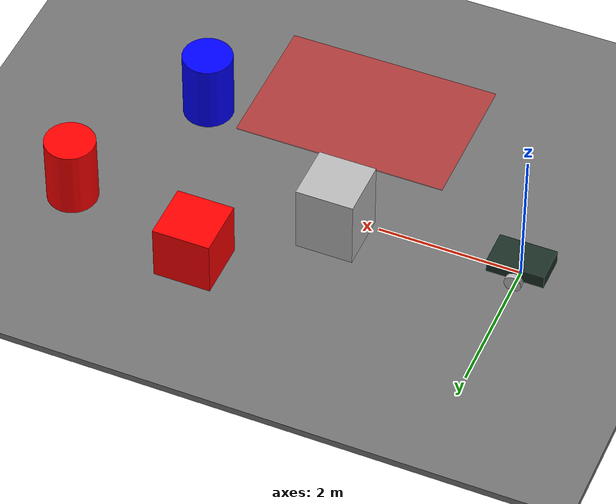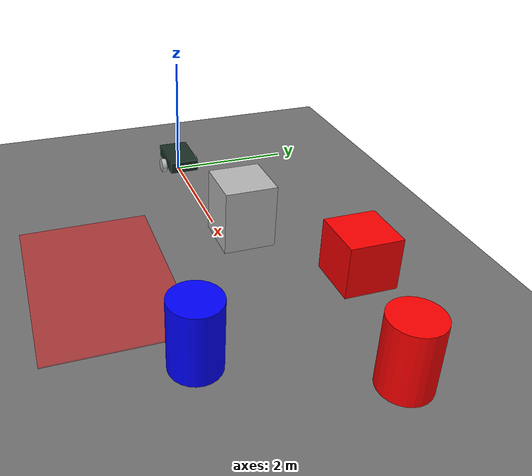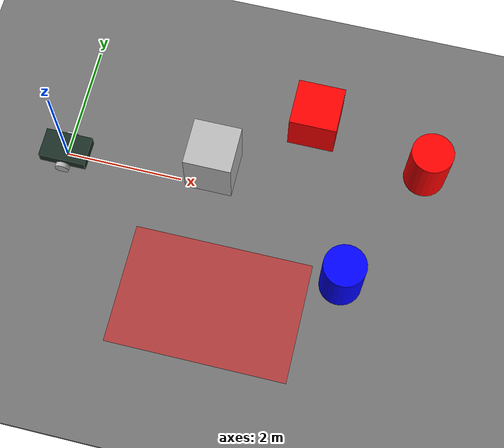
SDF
<?xml version="1.0" ?>

<sdf version="1.9">

  <world name="tianma_world">

    <!-- Simulation systems        -->

    <physics name="default_physics" type="ignored">
      <max_step_size>0.001</max_step_size>
      <real_time_factor>1.0</real_time_factor>
    </physics>

    <plugin
      filename="gz-sim-physics-system"
      name="gz::sim::systems::Physics">
    </plugin>

    <plugin
      filename="gz-sim-sensors-system"
      name="gz::sim::systems::Sensors">
      <render_engine>ogre2</render_engine>
    </plugin>

    <plugin
      filename="gz-sim-user-commands-system"
      name="gz::sim::systems::UserCommands">
    </plugin>

    <plugin
      filename="gz-sim-scene-broadcaster-system"
      name="gz::sim::systems::SceneBroadcaster">
    </plugin>

    <!-- Lighting                  -->

    <light type="directional" name="sun">

      <pose>
        0 0 10 0 0 0
      </pose>

      <diffuse>
        0.8 0.8 0.8 1
      </diffuse>

      <specular>
        0.2 0.2 0.2 1
      </specular>

      <direction>
        -0.5 0.1 -0.9
      </direction>

    </light>

    <!-- Ground                    -->

    <model name="ground">

      <static>true</static>

      <pose>
        0 0 -0.05 0 0 0
      </pose>

      <link name="ground_link">

        <collision name="ground_collision">

          <geometry>

            <box>
              <size>
                20 20 0.1
              </size>
            </box>

          </geometry>

        </collision>

        <visual name="ground_visual">

          <geometry>

            <box>
              <size>
                20 20 0.1
              </size>
            </box>

          </geometry>

          <material>

            <ambient>
              0.35 0.35 0.35 1
            </ambient>

            <diffuse>
              0.45 0.45 0.45 1
            </diffuse>

          </material>

        </visual>

      </link>

    </model>

    <!-- Tianma rover              -->

    <model name="tianma_rover">

      <!-- Chassis -->

      <link name="chassis">

        <pose>
          0 0 0.22 0 0 0
        </pose>

        <inertial>

          <mass>8.0</mass>

          <inertia>
            <ixx>0.193</ixx>
            <iyy>0.453</iyy>
            <izz>0.593</izz>

            <ixy>0</ixy>
            <ixz>0</ixz>
            <iyz>0</iyz>
          </inertia>

        </inertial>

        <collision name="chassis_collision">

          <geometry>

            <box>
              <size>
                0.8 0.5 0.2
              </size>
            </box>

          </geometry>

        </collision>

        <visual name="chassis_visual">

          <geometry>

            <box>
              <size>
                0.8 0.5 0.2
              </size>
            </box>

          </geometry>

          <material>

            <ambient>
              0.08 0.12 0.10 1
            </ambient>

            <diffuse>
              0.10 0.18 0.14 1
            </diffuse>

          </material>

        </visual>

        <!-- RGB + Depth camera -->

        <sensor
          name="front_rgbd"
          type="rgbd_camera">

          <pose>
            0.43 0 0.05 0 0 0
          </pose>

          <camera>

            <horizontal_fov>
              1.047
            </horizontal_fov>

            <image>
              <width>640</width>
              <height>480</height>
            </image>

            <clip>
              <near>0.1</near>
              <far>20.0</far>
            </clip>

          </camera>

          <always_on>true</always_on>

          <update_rate>
            15
          </update_rate>

          <visualize>true</visualize>

          <topic>
            tianma/front_rgbd
          </topic>

        </sensor>

      </link>

      <!-- Left wheel -->

      <link name="left_wheel">

        <pose relative_to="chassis">
          0 0.29 -0.12 1.5708 0 0
        </pose>

        <inertial>

          <mass>0.8</mass>

          <inertia>
            <ixx>0.0033</ixx>
            <iyy>0.0058</iyy>
            <izz>0.0033</izz>

            <ixy>0</ixy>
            <ixz>0</ixz>
            <iyz>0</iyz>
          </inertia>

        </inertial>

        <collision name="collision">

          <geometry>

            <cylinder>
              <radius>0.12</radius>
              <length>0.08</length>
            </cylinder>

          </geometry>

        </collision>

        <visual name="visual">

          <geometry>

            <cylinder>
              <radius>0.12</radius>
              <length>0.08</length>
            </cylinder>

          </geometry>

        </visual>

      </link>

      <!-- Right wheel -->

      <link name="right_wheel">

        <pose relative_to="chassis">
          0 -0.29 -0.12 1.5708 0 0
        </pose>

        <inertial>

          <mass>0.8</mass>

          <inertia>
            <ixx>0.0033</ixx>
            <iyy>0.0058</iyy>
            <izz>0.0033</izz>

            <ixy>0</ixy>
            <ixz>0</ixz>
            <iyz>0</iyz>
          </inertia>

        </inertial>

        <collision name="collision">

          <geometry>

            <cylinder>
              <radius>0.12</radius>
              <length>0.08</length>
            </cylinder>

          </geometry>

        </collision>

        <visual name="visual">

          <geometry>

            <cylinder>
              <radius>0.12</radius>
              <length>0.08</length>
            </cylinder>

          </geometry>

        </visual>

      </link>

      <!-- Rear caster -->

      <link name="caster">

        <pose>
          -0.30 0 0.06 0 0 0
        </pose>

        <inertial>

          <mass>0.2</mass>

          <inertia>
            <ixx>0.000288</ixx>
            <iyy>0.000288</iyy>
            <izz>0.000288</izz>

            <ixy>0</ixy>
            <ixz>0</ixz>
            <iyz>0</iyz>
          </inertia>

        </inertial>

        <collision name="collision">

          <geometry>

            <sphere>
              <radius>0.06</radius>
            </sphere>

          </geometry>

        </collision>

        <visual name="visual">

          <geometry>

            <sphere>
              <radius>0.06</radius>
            </sphere>

          </geometry>

        </visual>

      </link>

      <!-- Wheel joints -->

      <joint
        name="left_wheel_joint"
        type="revolute">

        <pose relative_to="left_wheel"/>

        <parent>
            chassis
        </parent>

        <child>
            left_wheel
        </child>

        <axis>
            <xyz expressed_in="__model__">
            0 1 0
            </xyz>
        </axis>

        </joint>

      <joint
        name="right_wheel_joint"
        type="revolute">

        <pose relative_to="right_wheel"/>

        <parent>
            chassis
        </parent>

        <child>
            right_wheel
        </child>

        <axis>
            <xyz expressed_in="__model__">
            0 1 0
            </xyz>
        </axis>

        </joint>

      <joint
        name="caster_joint"
        type="fixed">

        <parent>
          chassis
        </parent>

        <child>
          caster
        </child>

      </joint>

      <!-- Differential drive -->

      <plugin
        filename="gz-sim-diff-drive-system"
        name="gz::sim::systems::DiffDrive">

        <left_joint>
          left_wheel_joint
        </left_joint>

        <right_joint>
          right_wheel_joint
        </right_joint>

        <wheel_separation>
          0.58
        </wheel_separation>

        <wheel_radius>
          0.12
        </wheel_radius>

        <odom_publish_frequency>
          10
        </odom_publish_frequency>

        <topic>
          /cmd_vel
        </topic>
        <odom_topic>
          /odom
        </odom_topic>

        <tf_topic>
          /tf
        </tf_topic>

        <frame_id>
          odom
        </frame_id>

        <child_frame_id>
          base_link
        </child_frame_id>

      </plugin>

    </model>

    <!-- Obstacle                  -->

    <model name="obstacle">

      <static>true</static>

      <pose>
        2.5 0.3 0.5 0 0 0
      </pose>

      <link name="link">

        <collision name="collision">

          <geometry>

            <box>
              <size>
                0.8 0.8 1.0
              </size>
            </box>

          </geometry>

        </collision>

        <visual name="visual">

          <geometry>

            <box>
              <size>
                0.8 0.8 1.0
              </size>
            </box>

          </geometry>

        </visual>

      </link>

    </model>

    <!-- Red box                   -->

    <model name="red_box">

      <static>true</static>

      <pose>
        4 1.5 0.4 0 0 0
      </pose>

      <link name="link">

        <collision name="collision">

          <geometry>

            <box>
              <size>
                0.8 0.8 0.8
              </size>
            </box>

          </geometry>

        </collision>

        <visual name="visual">

          <geometry>

            <box>
              <size>
                0.8 0.8 0.8
              </size>
            </box>

          </geometry>

          <material>
            <ambient>1 0 0 1</ambient>
            <diffuse>1 0 0 1</diffuse>
          </material>

        </visual>

      </link>

    </model>

    <!-- Blue cylinder             -->

    <model name="blue_cylinder">

      <static>true</static>

      <pose>
        5 -1.2 0.5 0 0 0
      </pose>

      <link name="link">

        <collision name="collision">

          <geometry>

            <cylinder>
              <radius>0.35</radius>
              <length>1.0</length>
            </cylinder>

          </geometry>

        </collision>

        <visual name="visual">

          <geometry>

            <cylinder>
              <radius>0.35</radius>
              <length>1.0</length>
            </cylinder>

          </geometry>

          <material>
            <ambient>0 0 1 1</ambient>
            <diffuse>0 0 1 1</diffuse>
          </material>

        </visual>

      </link>

    </model>

    <!-- Red cylinder              -->

    <model name="red_cylinder">

      <static>true</static>

      <pose>
        6 1.0 0.5 0 0 0
      </pose>

      <link name="link">

        <collision name="collision">

          <geometry>

            <cylinder>
              <radius>0.35</radius>
              <length>1.0</length>
            </cylinder>

          </geometry>

        </collision>

        <visual name="visual">

          <geometry>

            <cylinder>
              <radius>0.35</radius>
              <length>1.0</length>
            </cylinder>

          </geometry>

          <material>
            <ambient>1 0 0 1</ambient>
            <diffuse>1 0 0 1</diffuse>
          </material>

        </visual>

      </link>

    </model>

    <!-- Restricted zone           -->
    <!-- visual only               -->

    <model name="restricted_zone">

      <static>true</static>

      <pose>
        3 -2 0.01 0 0 0
      </pose>

      <link name="link">

        <visual name="restricted_visual">

          <geometry>

            <box>
              <size>
                3 2 0.02
              </size>
            </box>

          </geometry>

          <transparency>
            0.55
          </transparency>

          <material>
            <ambient>1 0 0 0.45</ambient>
            <diffuse>1 0 0 0.45</diffuse>
          </material>

        </visual>

      </link>

    </model>

  </world>

</sdf>
